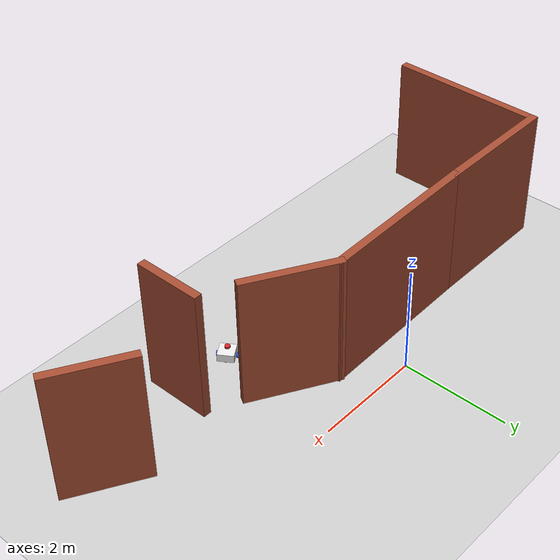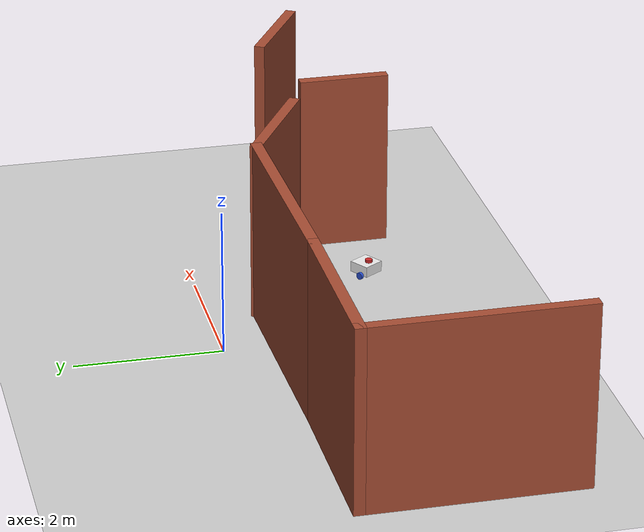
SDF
<sdf version="1.7">
 <world name="default">
  <light name="sun" type="directional">
   <pose>0 0 10 0 -0 0</pose>
   <diffuse>0.8 0.8 0.8 1</diffuse>
   <specular>0.2 0.2 0.2 1</specular>
   <attenuation>
    <range>1000</range>
    <constant>0.9</constant>
    <linear>0.01</linear>
    <quadratic>0.001</quadratic>
   </attenuation>
   <direction>-0.5 0.1 -0.9</direction>
   <spot><inner_angle>0</inner_angle><outer_angle>0</outer_angle><falloff>0</falloff></spot>
  </light>
  <model name="ground_plane">
   <static>1</static>
   <link name="link">
    <collision name="collision">
     <geometry><plane><normal>0 0 1</normal><size>100 100</size></plane></geometry>
     <surface>
      <contact><collide_bitmask>65535</collide_bitmask></contact>
      <friction><ode><mu>100</mu><mu2>50</mu2></ode></friction>
     </surface>
    </collision>
    <visual name="visual">
     <cast_shadows>0</cast_shadows>
     <geometry><plane><normal>0 0 1</normal><size>100 100</size></plane></geometry>
     <material>
      <script><uri>file://media/materials/scripts/gazebo.material</uri><name>Gazebo/Grey</name></script>
     </material>
    </visual>
   </link>
  </model>
  <gravity>0 0 -9.8</gravity>
  <magnetic_field>6e-06 2.3e-05 -4.2e-05</magnetic_field>
  <atmosphere type="adiabatic"/>
  <physics type="ode">
   <max_step_size>0.001</max_step_size>
   <real_time_factor>1</real_time_factor>
   <real_time_update_rate>1000</real_time_update_rate>
  </physics>
  <scene><ambient>0.4 0.4 0.4 1</ambient><background>0.7 0.7 0.7 1</background><shadows>1</shadows></scene>
  <audio><device>default</device></audio>
  <spherical_coordinates>
   <surface_model>EARTH_WGS84</surface_model>
   <latitude_deg>0</latitude_deg>
   <longitude_deg>0</longitude_deg>
   <elevation>0</elevation>
   <heading_deg>0</heading_deg>
  </spherical_coordinates>
  <model name="my_bot">
   <link name="base_link">
    <inertial>
     <pose>0.055714 0 0.078571 0 -0 0</pose>
     <mass>0.7</mass>
     <inertia>
      <ixx>0.0064169</ixx>
      <ixy>0</ixy>
      <ixz>0.00118929</ixz>
      <iyy>0.00745405</iyy>
      <iyz>0</iyz>
      <izz>0.00876214</izz>
     </inertia>
    </inertial>
    <collision name="base_link_fixed_joint_lump__chassis_collision">
     <pose>0.05 0 0.075 0 -0 0</pose>
     <geometry><box><size>0.3 0.3 0.15</size></box></geometry>
    </collision>
    <collision name="base_link_fixed_joint_lump__caster_wheel_collision_1">
     <pose>0.14 0 0 0 -0 0</pose>
     <geometry><sphere><radius>0.05</radius></sphere></geometry>
     <surface><friction><ode><mu>0.001</mu><mu2>0.001</mu2></ode></friction></surface>
    </collision>
    <collision name="base_link_fixed_joint_lump__laser_frame_collision_2">
     <pose>0 0 0.175 0 -0 0</pose>
     <geometry><cylinder><length>0.04</length><radius>0.05</radius></cylinder></geometry>
    </collision>
    <visual name="base_link_fixed_joint_lump__chassis_visual">
     <pose>0.05 0 0.075 0 -0 0</pose>
     <geometry><box><size>0.3 0.3 0.15</size></box></geometry>
     <material>
      <script><name>Gazebo/White</name><uri>file://media/materials/scripts/gazebo.material</uri></script>
     </material>
    </visual>
    <visual name="base_link_fixed_joint_lump__caster_wheel_visual_1">
     <pose>0.14 0 0 0 -0 0</pose>
     <geometry><sphere><radius>0.05</radius></sphere></geometry>
     <material>
      <script><name>Gazebo/Black</name><uri>file://media/materials/scripts/gazebo.material</uri></script>
     </material>
    </visual>
    <visual name="base_link_fixed_joint_lump__laser_frame_visual_2">
     <pose>0 0 0.175 0 -0 0</pose>
     <geometry><cylinder><length>0.04</length><radius>0.05</radius></cylinder></geometry>
     <material>
      <script><name>Gazebo/Red</name><uri>file://media/materials/scripts/gazebo.material</uri></script>
     </material>
    </visual>
    <sensor name="laser" type="ray">
     <visualize>1</visualize>
     <update_rate>10</update_rate>
     <ray>
      <scan>
       <horizontal>
        <samples>360</samples>
        <min_angle>-3.14</min_angle>
        <max_angle>3.14</max_angle>
        <resolution>1</resolution>
       </horizontal>
       <vertical><samples>1</samples><min_angle>0</min_angle><max_angle>0</max_angle></vertical>
      </scan>
      <range><min>0.3</min><max>12</max></range>
     </ray>
     <plugin name="laser_controller" filename="libgazebo_ros_ray_sensor.so">
      <ros><argument>~/out:=scan</argument></ros>
      <output_type>sensor_msgs/LaserScan</output_type>
      <frame_name>laser_frame</frame_name>
     </plugin>
     <pose>0 0 0.175 0 -0 0</pose>
    </sensor>
   </link>
   <joint name="left_wheel_joint" type="revolute">
    <pose relative_to="base_link">0 0.175 0 -1.5708 0 0</pose>
    <parent>base_link</parent>
    <child>left_wheel</child>
    <axis>
     <xyz>0 0 1</xyz>
     <limit><lower>-1e+16</lower><upper>1e+16</upper></limit>
     <dynamics><spring_reference>0</spring_reference><spring_stiffness>0</spring_stiffness></dynamics>
    </axis>
   </joint>
   <link name="left_wheel">
    <pose relative_to="left_wheel_joint">0 0 0 0 -0 0</pose>
    <inertial>
     <mass>0.1</mass>
     <inertia>
      <ixx>8.33333e-05</ixx>
      <ixy>0</ixy>
      <ixz>0</ixz>
      <iyy>8.33333e-05</iyy>
      <iyz>0</iyz>
      <izz>0.000125</izz>
     </inertia>
    </inertial>
    <collision name="left_wheel_collision">
     <geometry><cylinder><length>0.04</length><radius>0.05</radius></cylinder></geometry>
    </collision>
    <visual name="left_wheel_visual">
     <geometry><cylinder><length>0.04</length><radius>0.05</radius></cylinder></geometry>
     <material>
      <script><name>Gazebo/Blue</name><uri>file://media/materials/scripts/gazebo.material</uri></script>
     </material>
    </visual>
   </link>
   <joint name="right_wheel_joint" type="revolute">
    <pose relative_to="base_link">0 -0.175 0 1.5708 -0 0</pose>
    <parent>base_link</parent>
    <child>right_wheel</child>
    <axis>
     <xyz>0 0 -1</xyz>
     <limit><lower>-1e+16</lower><upper>1e+16</upper></limit>
     <dynamics><spring_reference>0</spring_reference><spring_stiffness>0</spring_stiffness></dynamics>
    </axis>
   </joint>
   <link name="right_wheel">
    <pose relative_to="right_wheel_joint">0 0 0 0 -0 0</pose>
    <inertial>
     <mass>0.1</mass>
     <inertia>
      <ixx>8.33333e-05</ixx>
      <ixy>0</ixy>
      <ixz>0</ixz>
      <iyy>8.33333e-05</iyy>
      <iyz>0</iyz>
      <izz>0.000125</izz>
     </inertia>
    </inertial>
    <collision name="right_wheel_collision">
     <geometry><cylinder><length>0.04</length><radius>0.05</radius></cylinder></geometry>
    </collision>
    <visual name="right_wheel_visual">
     <geometry><cylinder><length>0.04</length><radius>0.05</radius></cylinder></geometry>
     <material>
      <script><name>Gazebo/Blue</name><uri>file://media/materials/scripts/gazebo.material</uri></script>
     </material>
    </visual>
   </link>
   <static>0</static>
   <plugin name="diff_drive" filename="libgazebo_ros_diff_drive.so">
    <left_joint>left_wheel_joint</left_joint>
    <right_joint>right_wheel_joint</right_joint>
    <wheel_separation>0.35</wheel_separation>
    <wheel_diameter>0.1</wheel_diameter>
    <max_wheel_torque>200</max_wheel_torque>
    <max_wheel_acceleration>10.0</max_wheel_acceleration>
    <odometry_frame>odom</odometry_frame>
    <robot_base_frame>base_link</robot_base_frame>
    <publish_odom>1</publish_odom>
    <publish_odom_tf>1</publish_odom_tf>
    <publish_wheel_tf>1</publish_wheel_tf>
   </plugin>
   <pose>1.79554 -2.41781 0.05 0 1.3e-05 0.575048</pose>
  </model>
  <model name="maz1">
   <link name="Wall_0">
    <pose>-3.8649 1.89065 0 0 -0 3.14159</pose>
    <visual name="Wall_0_Visual">
     <pose>0 0 1.25 0 -0 0</pose>
     <geometry><box><size>2.5 0.15 2.5</size></box></geometry>
     <material>
      <script><uri>file://media/materials/scripts/gazebo.material</uri><name>Gazebo/Bricks</name></script>
      <ambient>1 1 1 1</ambient>
      <shader type="pixel"/>
     </material>
     <meta><layer>0</layer></meta>
    </visual>
    <collision name="Wall_0_Collision">
     <pose>0 0 1.25 0 -0 0</pose>
     <geometry><box><size>2.5 0.15 2.5</size></box></geometry>
     <surface>
      <friction>
       <ode><mu>1</mu><mu2>1</mu2><fdir1>0 0 0</fdir1><slip1>0</slip1><slip2>0</slip2></ode>
       <torsional>
        <coefficient>1</coefficient>
        <patch_radius>0</patch_radius>
        <surface_radius>0</surface_radius>
        <use_patch_radius>1</use_patch_radius>
        <ode><slip>0</slip></ode>
       </torsional>
      </friction>
      <bounce><restitution_coefficient>0</restitution_coefficient><threshold>1e+06</threshold></bounce>
      <contact>
       <collide_without_contact>0</collide_without_contact>
       <collide_without_contact_bitmask>1</collide_without_contact_bitmask>
       <collide_bitmask>1</collide_bitmask>
       <ode>
        <soft_cfm>0</soft_cfm>
        <soft_erp>0.2</soft_erp>
        <kp>1e+13</kp>
        <kd>1</kd>
        <max_vel>0.01</max_vel>
        <min_depth>0</min_depth>
       </ode>
       <bullet>
        <split_impulse>1</split_impulse>
        <split_impulse_penetration_threshold>-0.01</split_impulse_penetration_threshold>
        <soft_cfm>0</soft_cfm>
        <soft_erp>0.2</soft_erp>
        <kp>1e+13</kp>
        <kd>1</kd>
       </bullet>
      </contact>
     </surface>
    </collision>
   </link>
   <link name="Wall_1">
    <pose>-5.03989 0.465649 0 0 0 -1.5708</pose>
    <visual name="Wall_1_Visual">
     <pose>0 0 1.25 0 -0 0</pose>
     <geometry><box><size>3 0.15 2.5</size></box></geometry>
     <material>
      <script><uri>file://media/materials/scripts/gazebo.material</uri><name>Gazebo/Bricks</name></script>
      <ambient>1 1 1 1</ambient>
      <shader type="pixel"/>
     </material>
     <meta><layer>0</layer></meta>
    </visual>
    <collision name="Wall_1_Collision">
     <pose>0 0 1.25 0 -0 0</pose>
     <geometry><box><size>3 0.15 2.5</size></box></geometry>
     <surface>
      <friction>
       <ode><mu>1</mu><mu2>1</mu2><fdir1>0 0 0</fdir1><slip1>0</slip1><slip2>0</slip2></ode>
       <torsional>
        <coefficient>1</coefficient>
        <patch_radius>0</patch_radius>
        <surface_radius>0</surface_radius>
        <use_patch_radius>1</use_patch_radius>
        <ode><slip>0</slip></ode>
       </torsional>
      </friction>
      <bounce><restitution_coefficient>0</restitution_coefficient><threshold>1e+06</threshold></bounce>
      <contact>
       <collide_without_contact>0</collide_without_contact>
       <collide_without_contact_bitmask>1</collide_without_contact_bitmask>
       <collide_bitmask>1</collide_bitmask>
       <ode>
        <soft_cfm>0</soft_cfm>
        <soft_erp>0.2</soft_erp>
        <kp>1e+13</kp>
        <kd>1</kd>
        <max_vel>0.01</max_vel>
        <min_depth>0</min_depth>
       </ode>
       <bullet>
        <split_impulse>1</split_impulse>
        <split_impulse_penetration_threshold>-0.01</split_impulse_penetration_threshold>
        <soft_cfm>0</soft_cfm>
        <soft_erp>0.2</soft_erp>
        <kp>1e+13</kp>
        <kd>1</kd>
       </bullet>
      </contact>
     </surface>
    </collision>
   </link>
   <link name="Wall_10">
    <pose>1.05049 1.55117 0 0 -0 2.61799</pose>
    <visual name="Wall_10_Visual">
     <pose>0 0 1.25 0 -0 0</pose>
     <geometry><box><size>1.75 0.15 2.5</size></box></geometry>
     <material>
      <script><uri>file://media/materials/scripts/gazebo.material</uri><name>Gazebo/Bricks</name></script>
      <ambient>1 1 1 1</ambient>
      <shader type="pixel"/>
     </material>
     <meta><layer>0</layer></meta>
    </visual>
    <collision name="Wall_10_Collision">
     <pose>0 0 1.25 0 -0 0</pose>
     <geometry><box><size>1.75 0.15 2.5</size></box></geometry>
     <surface>
      <friction>
       <ode><mu>1</mu><mu2>1</mu2><fdir1>0 0 0</fdir1><slip1>0</slip1><slip2>0</slip2></ode>
       <torsional>
        <coefficient>1</coefficient>
        <patch_radius>0</patch_radius>
        <surface_radius>0</surface_radius>
        <use_patch_radius>1</use_patch_radius>
        <ode><slip>0</slip></ode>
       </torsional>
      </friction>
      <bounce><restitution_coefficient>0</restitution_coefficient><threshold>1e+06</threshold></bounce>
      <contact>
       <collide_without_contact>0</collide_without_contact>
       <collide_without_contact_bitmask>1</collide_without_contact_bitmask>
       <collide_bitmask>1</collide_bitmask>
       <ode>
        <soft_cfm>0</soft_cfm>
        <soft_erp>0.2</soft_erp>
        <kp>1e+13</kp>
        <kd>1</kd>
        <max_vel>0.01</max_vel>
        <min_depth>0</min_depth>
       </ode>
       <bullet>
        <split_impulse>1</split_impulse>
        <split_impulse_penetration_threshold>-0.01</split_impulse_penetration_threshold>
        <soft_cfm>0</soft_cfm>
        <soft_erp>0.2</soft_erp>
        <kp>1e+13</kp>
        <kd>1</kd>
       </bullet>
      </contact>
     </surface>
    </collision>
   </link>
   <link name="Wall_11">
    <pose>-1.16611 1.92091 0 0 0 -3.12174</pose>
    <visual name="Wall_11_Visual">
     <pose>0 0 1.25 0 -0 0</pose>
     <geometry><box><size>3.19816 0.15 2.5</size></box></geometry>
     <material>
      <script><uri>file://media/materials/scripts/gazebo.material</uri><name>Gazebo/Bricks</name></script>
      <ambient>1 1 1 1</ambient>
      <shader type="pixel"/>
     </material>
     <meta><layer>0</layer></meta>
    </visual>
    <collision name="Wall_11_Collision">
     <pose>0 0 1.25 0 -0 0</pose>
     <geometry><box><size>3.19816 0.15 2.5</size></box></geometry>
     <surface>
      <friction>
       <ode><mu>1</mu><mu2>1</mu2><fdir1>0 0 0</fdir1><slip1>0</slip1><slip2>0</slip2></ode>
       <torsional>
        <coefficient>1</coefficient>
        <patch_radius>0</patch_radius>
        <surface_radius>0</surface_radius>
        <use_patch_radius>1</use_patch_radius>
        <ode><slip>0</slip></ode>
       </torsional>
      </friction>
      <bounce><restitution_coefficient>0</restitution_coefficient><threshold>1e+06</threshold></bounce>
      <contact>
       <collide_without_contact>0</collide_without_contact>
       <collide_without_contact_bitmask>1</collide_without_contact_bitmask>
       <collide_bitmask>1</collide_bitmask>
       <ode>
        <soft_cfm>0</soft_cfm>
        <soft_erp>0.2</soft_erp>
        <kp>1e+13</kp>
        <kd>1</kd>
        <max_vel>0.01</max_vel>
        <min_depth>0</min_depth>
       </ode>
       <bullet>
        <split_impulse>1</split_impulse>
        <split_impulse_penetration_threshold>-0.01</split_impulse_penetration_threshold>
        <soft_cfm>0</soft_cfm>
        <soft_erp>0.2</soft_erp>
        <kp>1e+13</kp>
        <kd>1</kd>
       </bullet>
      </contact>
     </surface>
    </collision>
   </link>
   <link name="Wall_22">
    <pose>2.4001 0.290649 0 0 0 -1.5708</pose>
    <visual name="Wall_22_Visual">
     <pose>0 0 1.25 0 -0 0</pose>
     <geometry><box><size>1.25 0.15 2.5</size></box></geometry>
     <material>
      <script><uri>file://media/materials/scripts/gazebo.material</uri><name>Gazebo/Bricks</name></script>
      <ambient>1 1 1 1</ambient>
      <shader type="pixel"/>
     </material>
     <meta><layer>0</layer></meta>
    </visual>
    <collision name="Wall_22_Collision">
     <pose>0 0 1.25 0 -0 0</pose>
     <geometry><box><size>1.25 0.15 2.5</size></box></geometry>
     <surface>
      <friction>
       <ode><mu>1</mu><mu2>1</mu2><fdir1>0 0 0</fdir1><slip1>0</slip1><slip2>0</slip2></ode>
       <torsional>
        <coefficient>1</coefficient>
        <patch_radius>0</patch_radius>
        <surface_radius>0</surface_radius>
        <use_patch_radius>1</use_patch_radius>
        <ode><slip>0</slip></ode>
       </torsional>
      </friction>
      <bounce><restitution_coefficient>0</restitution_coefficient><threshold>1e+06</threshold></bounce>
      <contact>
       <collide_without_contact>0</collide_without_contact>
       <collide_without_contact_bitmask>1</collide_without_contact_bitmask>
       <collide_bitmask>1</collide_bitmask>
       <ode>
        <soft_cfm>0</soft_cfm>
        <soft_erp>0.2</soft_erp>
        <kp>1e+13</kp>
        <kd>1</kd>
        <max_vel>0.01</max_vel>
        <min_depth>0</min_depth>
       </ode>
       <bullet>
        <split_impulse>1</split_impulse>
        <split_impulse_penetration_threshold>-0.01</split_impulse_penetration_threshold>
        <soft_cfm>0</soft_cfm>
        <soft_erp>0.2</soft_erp>
        <kp>1e+13</kp>
        <kd>1</kd>
       </bullet>
      </contact>
     </surface>
    </collision>
   </link>
   <link name="Wall_8">
    <pose>4.42788 0.813673 0 0 -0 2.61799</pose>
    <visual name="Wall_8_Visual">
     <pose>0 0 1.25 0 -0 0</pose>
     <geometry><box><size>1.5 0.15 2.5</size></box></geometry>
     <material>
      <script><uri>file://media/materials/scripts/gazebo.material</uri><name>Gazebo/Bricks</name></script>
      <ambient>1 1 1 1</ambient>
      <shader type="pixel"/>
     </material>
     <meta><layer>0</layer></meta>
    </visual>
    <collision name="Wall_8_Collision">
     <pose>0 0 1.25 0 -0 0</pose>
     <geometry><box><size>1.5 0.15 2.5</size></box></geometry>
     <surface>
      <friction>
       <ode><mu>1</mu><mu2>1</mu2><fdir1>0 0 0</fdir1><slip1>0</slip1><slip2>0</slip2></ode>
       <torsional>
        <coefficient>1</coefficient>
        <patch_radius>0</patch_radius>
        <surface_radius>0</surface_radius>
        <use_patch_radius>1</use_patch_radius>
        <ode><slip>0</slip></ode>
       </torsional>
      </friction>
      <bounce><restitution_coefficient>0</restitution_coefficient><threshold>1e+06</threshold></bounce>
      <contact>
       <collide_without_contact>0</collide_without_contact>
       <collide_without_contact_bitmask>1</collide_without_contact_bitmask>
       <collide_bitmask>1</collide_bitmask>
       <ode>
        <soft_cfm>0</soft_cfm>
        <soft_erp>0.2</soft_erp>
        <kp>1e+13</kp>
        <kd>1</kd>
        <max_vel>0.01</max_vel>
        <min_depth>0</min_depth>
       </ode>
       <bullet>
        <split_impulse>1</split_impulse>
        <split_impulse_penetration_threshold>-0.01</split_impulse_penetration_threshold>
        <soft_cfm>0</soft_cfm>
        <soft_erp>0.2</soft_erp>
        <kp>1e+13</kp>
        <kd>1</kd>
       </bullet>
      </contact>
     </surface>
    </collision>
   </link>
   <static>1</static>
   <pose>0.589895 -2.62065 0 0 -0 0</pose>
  </model>
 </world>
</sdf>
